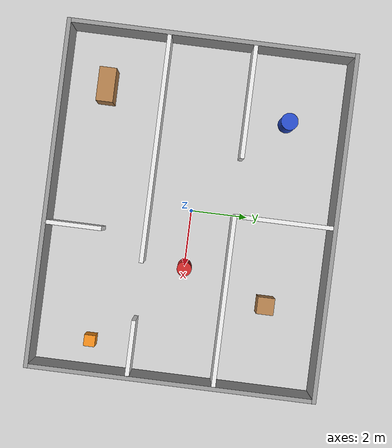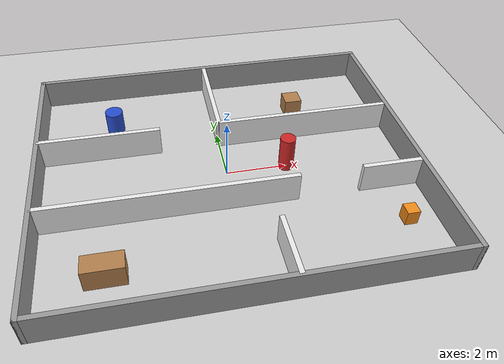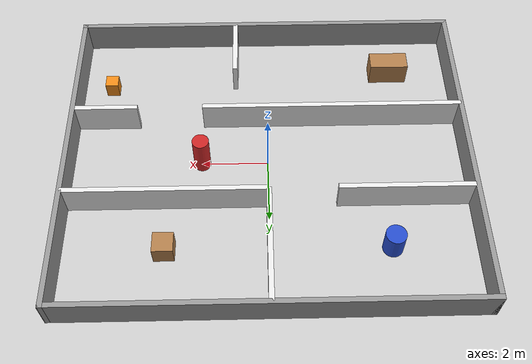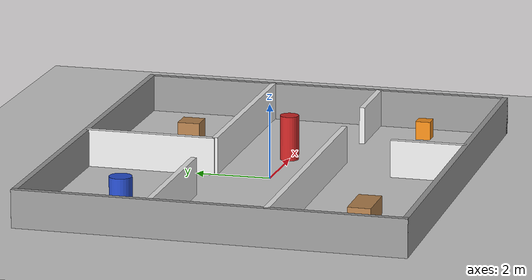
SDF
<?xml version="1.0" ?>
<sdf version="1.6">
  <world name="sniff_indoor">

    <include><uri>model://sun</uri></include>
    <include><uri>model://ground_plane</uri></include>

    <physics type="ode">
      <max_step_size>0.001</max_step_size>
      <real_time_factor>1.0</real_time_factor>
      <real_time_update_rate>1000</real_time_update_rate>
    </physics>

    <scene>
      <ambient>0.6 0.6 0.6 1</ambient>
      <background>0.8 0.85 0.9 1</background>
      <shadows>false</shadows>
    </scene>

    <!-- ================= SCIANY ================= -->
    <model name="walls">
      <static>true</static>

      <!-- sciany zewnetrzne -->
      <link name="w_north">
        <pose>0 5 0.5 0 0 0</pose>
        <collision name="c"><geometry><box><size>12.15 0.15 1.0</size></box></geometry></collision>
        <visual name="v"><geometry><box><size>12.15 0.15 1.0</size></box></geometry>
          <material><script><uri>file://media/materials/scripts/gazebo.material</uri><name>Gazebo/Grey</name></script></material>
        </visual>
      </link>

      <link name="w_south">
        <pose>0 -5 0.5 0 0 0</pose>
        <collision name="c"><geometry><box><size>12.15 0.15 1.0</size></box></geometry></collision>
        <visual name="v"><geometry><box><size>12.15 0.15 1.0</size></box></geometry>
          <material><script><uri>file://media/materials/scripts/gazebo.material</uri><name>Gazebo/Grey</name></script></material>
        </visual>
      </link>

      <link name="w_west">
        <pose>-6 0 0.5 0 0 0</pose>
        <collision name="c"><geometry><box><size>0.15 10.15 1.0</size></box></geometry></collision>
        <visual name="v"><geometry><box><size>0.15 10.15 1.0</size></box></geometry>
          <material><script><uri>file://media/materials/scripts/gazebo.material</uri><name>Gazebo/Grey</name></script></material>
        </visual>
      </link>

      <link name="w_east">
        <pose>6 0 0.5 0 0 0</pose>
        <collision name="c"><geometry><box><size>0.15 10.15 1.0</size></box></geometry></collision>
        <visual name="v"><geometry><box><size>0.15 10.15 1.0</size></box></geometry>
          <material><script><uri>file://media/materials/scripts/gazebo.material</uri><name>Gazebo/Grey</name></script></material>
        </visual>
      </link>

      <!-- sciana polnocna korytarza: przejscie x = -2..0 -->
      <link name="w_cor_n_left">
        <pose>-4 1.5 0.5 0 0 0</pose>
        <collision name="c"><geometry><box><size>4.0 0.15 1.0</size></box></geometry></collision>
        <visual name="v"><geometry><box><size>4.0 0.15 1.0</size></box></geometry>
          <material><script><uri>file://media/materials/scripts/gazebo.material</uri><name>Gazebo/White</name></script></material>
        </visual>
      </link>

      <link name="w_cor_n_right">
        <pose>3 1.5 0.5 0 0 0</pose>
        <collision name="c"><geometry><box><size>6.0 0.15 1.0</size></box></geometry></collision>
        <visual name="v"><geometry><box><size>6.0 0.15 1.0</size></box></geometry>
          <material><script><uri>file://media/materials/scripts/gazebo.material</uri><name>Gazebo/White</name></script></material>
        </visual>
      </link>

      <!-- sciana poludniowa korytarza: przejscie x = 2..4 -->
      <link name="w_cor_s_left">
        <pose>-2 -1.5 0.5 0 0 0</pose>
        <collision name="c"><geometry><box><size>8.0 0.15 1.0</size></box></geometry></collision>
        <visual name="v"><geometry><box><size>8.0 0.15 1.0</size></box></geometry>
          <material><script><uri>file://media/materials/scripts/gazebo.material</uri><name>Gazebo/White</name></script></material>
        </visual>
      </link>

      <link name="w_cor_s_right">
        <pose>5 -1.5 0.5 0 0 0</pose>
        <collision name="c"><geometry><box><size>2.0 0.15 1.0</size></box></geometry></collision>
        <visual name="v"><geometry><box><size>2.0 0.15 1.0</size></box></geometry>
          <material><script><uri>file://media/materials/scripts/gazebo.material</uri><name>Gazebo/White</name></script></material>
        </visual>
      </link>

      <!-- podzial pomieszczen polnocnych -->
      <link name="w_div_north">
        <pose>0 3.25 0.5 0 0 0</pose>
        <collision name="c"><geometry><box><size>0.15 3.5 1.0</size></box></geometry></collision>
        <visual name="v"><geometry><box><size>0.15 3.5 1.0</size></box></geometry>
          <material><script><uri>file://media/materials/scripts/gazebo.material</uri><name>Gazebo/White</name></script></material>
        </visual>
      </link>

      <!-- czesciowa przegroda w pom. poludniowym (test frontier exploration) -->
      <link name="w_div_south">
        <pose>1 -4 0.5 0 0 0</pose>
        <collision name="c"><geometry><box><size>0.15 2.0 1.0</size></box></geometry></collision>
        <visual name="v"><geometry><box><size>0.15 2.0 1.0</size></box></geometry>
          <material><script><uri>file://media/materials/scripts/gazebo.material</uri><name>Gazebo/White</name></script></material>
        </visual>
      </link>
    </model>

    <!-- ================= PRZESZKODY ================= -->
    <model name="furniture">
      <static>true</static>

      <link name="cabinet">
        <pose>3 3 0.3 0 0 0</pose>
        <collision name="c"><geometry><box><size>0.6 0.6 0.6</size></box></geometry></collision>
        <visual name="v"><geometry><box><size>0.6 0.6 0.6</size></box></geometry>
          <material><script><uri>file://media/materials/scripts/gazebo.material</uri><name>Gazebo/Wood</name></script></material>
        </visual>
      </link>

      <link name="bin">
        <pose>-3.5 3 0.4 0 0 0</pose>
        <collision name="c"><geometry><cylinder><radius>0.3</radius><length>0.8</length></cylinder></geometry></collision>
        <visual name="v"><geometry><cylinder><radius>0.3</radius><length>0.8</length></cylinder></geometry>
          <material><script><uri>file://media/materials/scripts/gazebo.material</uri><name>Gazebo/Blue</name></script></material>
        </visual>
      </link>

      <link name="table">
        <pose>-4 -3.5 0.375 0 0 0</pose>
        <collision name="c"><geometry><box><size>1.2 0.6 0.75</size></box></geometry></collision>
        <visual name="v"><geometry><box><size>1.2 0.6 0.75</size></box></geometry>
          <material><script><uri>file://media/materials/scripts/gazebo.material</uri><name>Gazebo/Wood</name></script></material>
        </visual>
      </link>

      <link name="pillar_corridor">
        <pose>2 0 0.6 0 0 0</pose>
        <collision name="c"><geometry><cylinder><radius>0.25</radius><length>1.2</length></cylinder></geometry></collision>
        <visual name="v"><geometry><cylinder><radius>0.25</radius><length>1.2</length></cylinder></geometry>
          <material><script><uri>file://media/materials/scripts/gazebo.material</uri><name>Gazebo/Red</name></script></material>
        </visual>
      </link>

      <link name="box_small">
        <pose>5 -3 0.25 0 0 0</pose>
        <collision name="c"><geometry><box><size>0.4 0.4 0.5</size></box></geometry></collision>
        <visual name="v"><geometry><box><size>0.4 0.4 0.5</size></box></geometry>
          <material><script><uri>file://media/materials/scripts/gazebo.material</uri><name>Gazebo/Orange</name></script></material>
        </visual>
      </link>
    </model>

  </world>
</sdf>
